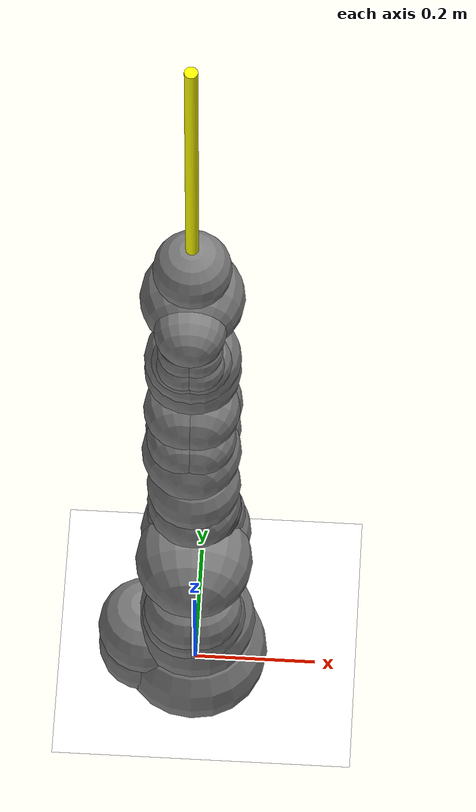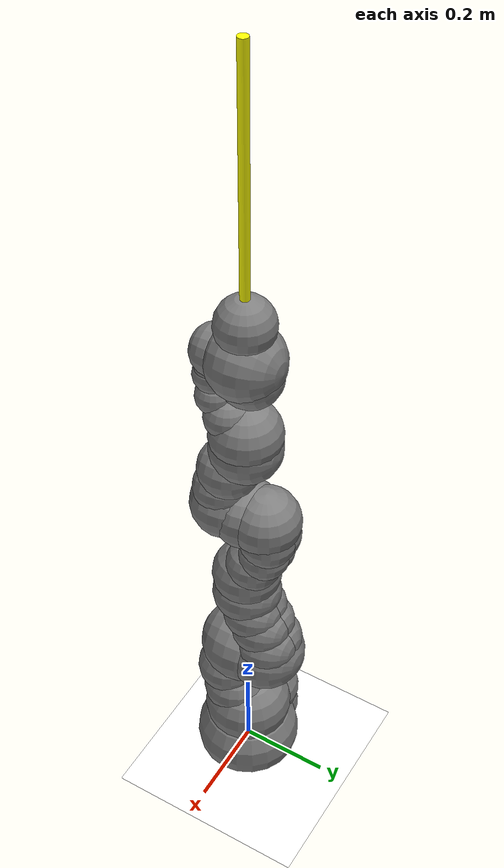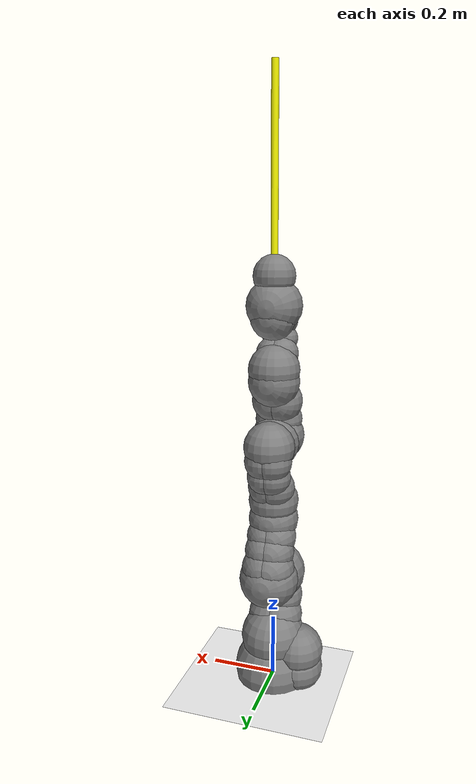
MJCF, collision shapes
<mujoco model="iiwa14">
  <compiler angle="radian" meshdir="assets" autolimits="true"/>

  <option integrator="implicitfast" timestep="0.001"/>

  <default>
    <default class="iiwa">
      <material specular="0.5" shininess="0.25"/>
      <joint axis="0 0 1"/>
      <general gaintype="fixed" biastype="affine" gainprm="1" biasprm="0 0 0" forcelimited="false"/>
      <default class="joint1">
        <joint range="-2.96706 2.96706" limited="false"/>
        <general ctrlrange="-2.96706 2.96706" ctrllimited="false"/>
        <default class="joint2">
          <joint range="-2.0944 2.0944" limited="false"/>
          <general ctrlrange="-2.0944 2.0944" ctrllimited="false"/>
        </default>
      </default>
      <default class="joint3">
        <joint range="-3.05433 3.05433" limited="false"/>
        <general ctrlrange="-3.05433 3.05433" ctrllimited="false"/>
      </default>
      <default class="visual">
        <geom type="mesh" contype="0" conaffinity="0" group="2" material="gray"/>
      </default>
      <default class="collision">
        <geom group="3"/>
      </default>
      <site size="0.001" rgba="1 0 0 1" group="4"/>
    </default>
  </default>

  <asset>
    <material class="iiwa" name="gray" rgba="0.4 0.4 0.4 1"/>
    <material class="iiwa" name="light_gray" rgba="0.6 0.6 0.6 1"/>
    <material class="iiwa" name="black" rgba="0 0 0 1"/>
    <material class="iiwa" name="orange" rgba="1 0.423529 0.0392157 1"/>

    <mesh file="link_0.obj"/>
    <mesh file="link_1.obj"/>
    <mesh file="link_2_orange.obj"/>
    <mesh file="link_2_grey.obj"/>
    <mesh file="link_3.obj"/>
    <mesh file="band.obj"/>
    <mesh file="kuka.obj"/>
    <mesh file="link_4_orange.obj"/>
    <mesh file="link_4_grey.obj"/>
    <mesh file="link_5.obj"/>
    <mesh file="link_6_orange.obj"/>
    <mesh file="link_6_grey.obj"/>
    <mesh file="link_7.obj"/>
  </asset>

  <!-- for the grid floor -->
  <asset>
    <texture name="grid_texture"
      type="2d"
      builtin="checker"
      width="512"
      height="512"
      rgb1="0.5 0.5 0.8" rgb2="0.5 0.5 0.5" />

    <material name="grid"
      texture="grid_texture"
      texrepeat="1 1" texuniform="true" reflectance="0.5"
    />

  </asset>

  <worldbody>
    <light name="top" pos="0 0 2" mode="trackcom"/>

    <!-- added global light to increase brightness -->
    <light name="global_light"
      pos="0 0 4"
      dir="0 0 -1"
      directional="true"
      diffuse="0.8 0.8 0.8"
      specular="0.1 0.1 0.1" />

    <!-- checkered ground -->
    <geom name="ground"
      type="plane"
      size="20 20 0.1"
      material="grid" contype="1" conaffinity="1" rgba="1 1 1 1" />

    <body name="base" childclass="iiwa">
      <inertial mass="5" pos="-0.1 0 0.07" diaginertia="0.05 0.06 0.03"/>
      <geom class="visual" mesh="link_0"/>
      <geom class="collision" size="0.12" pos="0 0 0.03"/>
      <geom class="collision" size="0.08" pos="-0.08 0 0.103"/>
      <geom class="collision" size="0.08" pos="-0.08 0 0.04"/>
      <geom class="collision" size="0.1" pos="0 0 0.14"/>
      <body name="link1" pos="0 0 0.1575">
        <inertial mass="5.76" pos="0 -0.03 0.12" diaginertia="0.0333 0.033 0.0123"/>
        <joint name="joint1" class="joint1"/>
        <geom class="visual" mesh="link_1"/>
        <geom class="collision" size="0.08" pos="0 0 -0.0005"/>
        <geom class="collision" size="0.075" pos="0.01 -0.025 0.0425"/>
        <geom class="collision" size="0.075" pos="-0.01 -0.025 0.0425"/>
        <geom class="collision" size="0.07" pos="0.01 -0.045 0.1025"/>
        <geom class="collision" size="0.07" pos="-0.01 -0.045 0.1025"/>
        <body name="link2" pos="0 0 0.2025" quat="0 0 1 1">
          <inertial mass="6.35" pos="0.0003 0.059 0.042" diaginertia="0.0305 0.0304 0.011" quat="0 0 1 1"/>
          <joint name="joint2" class="joint2"/>
          <geom class="visual" material="orange" mesh="link_2_orange"/>
          <geom class="visual" mesh="link_2_grey"/>
          <geom class="collision" size="0.095" pos="0 0 -0.01"/>
          <geom class="collision" size="0.09" pos="0 0 0.045"/>
          <geom class="collision" size="0.07" pos="-0.01 0.04 0.054"/>
          <geom class="collision" size="0.065" pos="-0.01 0.09 0.04"/>
          <geom class="collision" size="0.065" pos="-0.01 0.13 0.02"/>
          <geom class="collision" size="0.07" pos="0.01 0.04 0.054"/>
          <geom class="collision" size="0.065" pos="0.01 0.09 0.04"/>
          <geom class="collision" size="0.065" pos="0.01 0.13 0.02"/>
          <geom class="collision" size="0.075" pos="0 0.18 0"/>
          <body name="link3" pos="0 0.2045 0" quat="0 0 1 1">
            <inertial mass="3.5" pos="0 0.03 0.13" diaginertia="0.025 0.0238 0.0076"/>
            <joint name="joint3" class="joint1"/>
            <geom class="visual" mesh="link_3"/>
            <geom class="visual" material="light_gray" mesh="band"/>
            <geom class="visual" material="black" mesh="kuka"/>
            <geom class="collision" size="0.075" pos="0 0 0.0355"/>
            <geom class="collision" size="0.06" pos="0.01 0.023 0.0855"/>
            <geom class="collision" size="0.055" pos="0.01 0.048 0.1255"/>
            <geom class="collision" size="0.06" pos="0.01 0.056 0.1755"/>
            <geom class="collision" size="0.06" pos="-0.01 0.023 0.0855"/>
            <geom class="collision" size="0.055" pos="-0.01 0.048 0.1255"/>
            <geom class="collision" size="0.06" pos="-0.01 0.056 0.1755"/>
            <geom class="collision" size="0.075" pos="0 0.045 0.2155"/>
            <geom class="collision" size="0.075" pos="0 0 0.2155"/>
            <body name="link4" pos="0 0 0.2155" quat="1 1 0 0">
              <inertial mass="3.5" pos="0 0.067 0.034" diaginertia="0.017 0.0164 0.006" quat="1 1 0 0"/>
              <joint name="joint4" class="joint2"/>
              <geom class="visual" material="orange" mesh="link_4_orange"/>
              <geom class="visual" mesh="link_4_grey"/>
              <geom class="collision" size="0.078" pos="0 0.01 0.046"/>
              <geom class="collision" size="0.06" pos="0.01 0.06 0.052"/>
              <geom class="collision" size="0.065" pos="0.01 0.12 0.034"/>
              <geom class="collision" size="0.06" pos="-0.01 0.06 0.052"/>
              <geom class="collision" size="0.065" pos="-0.01 0.12 0.034"/>
              <geom class="collision" size="0.075" pos="0 0.184 0"/>
              <body name="link5" pos="0 0.1845 0" quat="0 0 1 1">
                <inertial mass="3.5" pos="0.0001 0.021 0.076" diaginertia="0.01 0.0087 0.00449"/>
                <joint name="joint5" class="joint1"/>
                <geom class="visual" mesh="link_5"/>
                <geom class="visual" material="light_gray" mesh="band"/>
                <geom class="visual" material="black" mesh="kuka"/>
                <geom class="collision" size="0.075" pos="0 0 0.0335"/>
                <geom class="collision" size="0.05" pos="-0.012 0.031 0.0755"/>
                <geom class="collision" size="0.05" pos="0.012 0.031 0.0755"/>
                <geom class="collision" size="0.04" pos="-0.012 0.06 0.1155"/>
                <geom class="collision" size="0.04" pos="0.012 0.06 0.1155"/>
                <geom class="collision" size="0.04" pos="-0.01 0.065 0.1655"/>
                <geom class="collision" size="0.04" pos="0.01 0.065 0.1655"/>
                <geom class="collision" size="0.035" pos="-0.012 0.065 0.1855"/>
                <geom class="collision" size="0.035" pos="0.012 0.065 0.1855"/>
                <body name="link6" pos="0 0 0.2155" quat="1 1 0 0">
                  <inertial mass="1.8" pos="0 0.0006 0.0004" diaginertia="0.0049 0.0047 0.0036" quat="1 1 0 0"/>
                  <joint name="joint6" class="joint2"/>
                  <geom class="visual" material="orange" mesh="link_6_orange"/>
                  <geom class="visual" mesh="link_6_grey"/>
                  <geom class="collision" size="0.055" pos="0 0 -0.059"/>
                  <geom class="collision" size="0.065" pos="0 -0.03 0.011"/>
                  <geom class="collision" size="0.08"/>
                  <body name="link7" pos="0 0.081 0" quat="0 0 1 1">
                    <inertial mass="1.2" pos="0 0 0.02" diaginertia="0.001 0.001 0.001"/>
                    <joint name="joint7" class="joint3"/>
                    <geom class="visual" mesh="link_7"/>
                    <geom class="collision" size="0.06" pos="0 0 0.001"/>
                    <site pos="0 0 0.045" name="attachment_site"/>
                    <body name="pendulum" pos="0 0 0.045" quat="1 0 0 0">
                      <!-- body frame rotated about wrist -x axis by 90deg-->
                      <geom
                        type="cylinder"
                        size="0.01 0.25"
                        mass="2.500"
                        pos="0 0 0.25" rgba="1 1 0 1" />
                      <site name="pend_com_site" pos="0 0 0.25" />
                      <!--  cylinder length in the size attribute is the half-length-->
                    </body>
                  </body>
                </body>
              </body>
            </body>
          </body>
        </body>
      </body>
    </body>
  </worldbody>

  <contact>
    <exclude body1="base" body2="link1"/>
    <exclude body1="base" body2="link2"/>
    <exclude body1="base" body2="link3"/>
    <exclude body1="link1" body2="link3"/>
    <exclude body1="link3" body2="link5"/>
    <exclude body1="link4" body2="link7"/>
    <exclude body1="link5" body2="link7"/>
  </contact>

  <actuator>
    <general name="actuator1" joint="joint1" class="joint1"/>
    <general name="actuator2" joint="joint2" class="joint2"/>
    <general name="actuator3" joint="joint3" class="joint1"/>
    <general name="actuator4" joint="joint4" class="joint2"/>
    <general name="actuator5" joint="joint5" class="joint1"/>
    <general name="actuator6" joint="joint6" class="joint2"/>
    <general name="actuator7" joint="joint7" class="joint3"/>
  </actuator>

  <keyframe>
    <key name="home" qpos="0 0.785398 0 -1.5708 0 0 0" ctrl="0 0.785398 0 -1.5708 0 0 0"/>
  </keyframe>
</mujoco>
